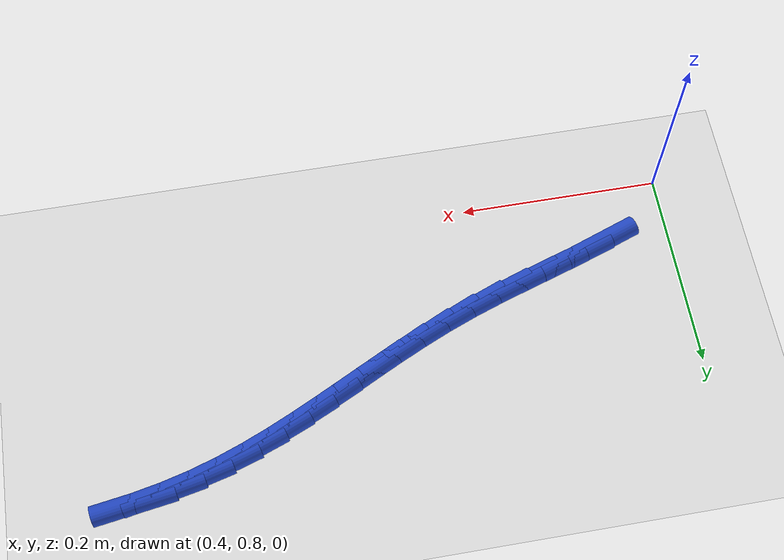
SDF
<sdf version="1.6">
 <world name="default">
  <model name="ground_plane">
   <static>1</static>
   <link name="link">
    <collision name="collision">
     <geometry><plane><normal>0 0 1</normal><size>100 100</size></plane></geometry>
     <surface><friction><ode><mu>100</mu><mu2>50</mu2></ode></friction></surface>
    </collision>
    <visual name="visual">
     <cast_shadows>0</cast_shadows>
     <geometry><plane><normal>0 0 1</normal><size>100 100</size></plane></geometry>
     <material>
      <script><uri>file://media/materials/scripts/gazebo.material</uri><name>Gazebo/WhiteGlow</name></script>
     </material>
    </visual>
   </link>
  </model>
  <model name="line">
   <link name="link_36">
    <pose>0.47197739136381084 0.8628700722413811 0.01 0 1.57 0.34816987220878004</pose>
    <collision name="collision">
     <geometry><cylinder><radius>0.01</radius><length>0.08</length></cylinder></geometry>
    </collision>
    <visual name="visual">
     <material>
      <script><name>Gazebo/Blue</name><uri>file://media/materials/scripts/gazebo.material</uri></script>
     </material>
     <geometry><cylinder><radius>0.01</radius><length>0.08</length></cylinder></geometry>
    </visual>
   </link>
   <link name="link_37">
    <pose>0.49981086287779014 0.8729723947355363 0.01 0 1.57 0.3221408546250163</pose>
    <collision name="collision">
     <geometry><cylinder><radius>0.01</radius><length>0.08</length></cylinder></geometry>
    </collision>
    <visual name="visual">
     <material>
      <script><name>Gazebo/Blue</name><uri>file://media/materials/scripts/gazebo.material</uri></script>
     </material>
     <geometry><cylinder><radius>0.01</radius><length>0.08</length></cylinder></geometry>
    </visual>
   </link>
   <link name="link_38">
    <pose>0.5283725485916635 0.8825053445107381 0.01 0 1.57 0.31311866313273773</pose>
    <collision name="collision">
     <geometry><cylinder><radius>0.01</radius><length>0.08</length></cylinder></geometry>
    </collision>
    <visual name="visual">
     <material>
      <script><name>Gazebo/Blue</name><uri>file://media/materials/scripts/gazebo.material</uri></script>
     </material>
     <geometry><cylinder><radius>0.01</radius><length>0.08</length></cylinder></geometry>
    </visual>
   </link>
   <link name="link_39">
    <pose>0.5572715623452341 0.8918619673029986 0.01 0 1.57 0.32044547369359994</pose>
    <collision name="collision">
     <geometry><cylinder><radius>0.01</radius><length>0.08</length></cylinder></geometry>
    </collision>
    <visual name="visual">
     <material>
      <script><name>Gazebo/Blue</name><uri>file://media/materials/scripts/gazebo.material</uri></script>
     </material>
     <geometry><cylinder><radius>0.01</radius><length>0.08</length></cylinder></geometry>
    </visual>
   </link>
   <link name="link_40">
    <pose>0.5861170179783048 0.9014353088483292 0.01 0 1.57 0.3442689581863764</pose>
    <collision name="collision">
     <geometry><cylinder><radius>0.01</radius><length>0.08</length></cylinder></geometry>
    </collision>
    <visual name="visual">
     <material>
      <script><name>Gazebo/Blue</name><uri>file://media/materials/scripts/gazebo.material</uri></script>
     </material>
     <geometry><cylinder><radius>0.01</radius><length>0.08</length></cylinder></geometry>
    </visual>
   </link>
   <link name="link_41">
    <pose>0.614518029330678 0.9116184148827412 0.01 0 1.57 0.3823207800764442</pose>
    <collision name="collision">
     <geometry><cylinder><radius>0.01</radius><length>0.08</length></cylinder></geometry>
    </collision>
    <visual name="visual">
     <material>
      <script><name>Gazebo/Blue</name><uri>file://media/materials/scripts/gazebo.material</uri></script>
     </material>
     <geometry><cylinder><radius>0.01</radius><length>0.08</length></cylinder></geometry>
    </visual>
   </link>
   <link name="link_42">
    <pose>0.6421481441470507 0.922728656417441 0.01 0 1.57 0.4178861468979338</pose>
    <collision name="collision">
     <geometry><cylinder><radius>0.01</radius><length>0.08</length></cylinder></geometry>
    </collision>
    <visual name="visual">
     <material>
      <script><name>Gazebo/Blue</name><uri>file://media/materials/scripts/gazebo.material</uri></script>
     </material>
     <geometry><cylinder><radius>0.01</radius><length>0.08</length></cylinder></geometry>
    </visual>
   </link>
   <link name="link_43">
    <pose>0.6690350363696759 0.9346674991636218 0.01 0 1.57 0.4446240596285598</pose>
    <collision name="collision">
     <geometry><cylinder><radius>0.01</radius><length>0.08</length></cylinder></geometry>
    </collision>
    <visual name="visual">
     <material>
      <script><name>Gazebo/Blue</name><uri>file://media/materials/scripts/gazebo.material</uri></script>
     </material>
     <geometry><cylinder><radius>0.01</radius><length>0.08</length></cylinder></geometry>
    </visual>
   </link>
   <link name="link_44">
    <pose>0.6953273975483508 0.9471942790925119 0.01 0 1.57 0.4621179388728625</pose>
    <collision name="collision">
     <geometry><cylinder><radius>0.01</radius><length>0.08</length></cylinder></geometry>
    </collision>
    <visual name="visual">
     <material>
      <script><name>Gazebo/Blue</name><uri>file://media/materials/scripts/gazebo.material</uri></script>
     </material>
     <geometry><cylinder><radius>0.01</radius><length>0.08</length></cylinder></geometry>
    </visual>
   </link>
   <link name="link_45">
    <pose>0.7211740240577932 0.9600682090631836 0.01 0 1.57 0.47005981276297243</pose>
    <collision name="collision">
     <geometry><cylinder><radius>0.01</radius><length>0.08</length></cylinder></geometry>
    </collision>
    <visual name="visual">
     <material>
      <script><name>Gazebo/Blue</name><uri>file://media/materials/scripts/gazebo.material</uri></script>
     </material>
     <geometry><cylinder><radius>0.01</radius><length>0.08</length></cylinder></geometry>
    </visual>
   </link>
   <link name="link_46">
    <pose>0.7467237122727204 0.9730485019347095 0.01 0 1.57 0.46820681863325114</pose>
    <collision name="collision">
     <geometry><cylinder><radius>0.01</radius><length>0.08</length></cylinder></geometry>
    </collision>
    <visual name="visual">
     <material>
      <script><name>Gazebo/Blue</name><uri>file://media/materials/scripts/gazebo.material</uri></script>
     </material>
     <geometry><cylinder><radius>0.01</radius><length>0.08</length></cylinder></geometry>
    </visual>
   </link>
   <link name="link_47">
    <pose>0.7721252585678502 0.9858943705661616 0.01 0 1.57 0.45636388445263176</pose>
    <collision name="collision">
     <geometry><cylinder><radius>0.01</radius><length>0.08</length></cylinder></geometry>
    </collision>
    <visual name="visual">
     <material>
      <script><name>Gazebo/Blue</name><uri>file://media/materials/scripts/gazebo.material</uri></script>
     </material>
     <geometry><cylinder><radius>0.01</radius><length>0.08</length></cylinder></geometry>
    </visual>
   </link>
   <link name="link_48">
    <pose>0.7975274593179 0.9983650278166122 0.01 0 1.57 0.4343930324177372</pose>
    <collision name="collision">
     <geometry><cylinder><radius>0.01</radius><length>0.08</length></cylinder></geometry>
    </collision>
    <visual name="visual">
     <material>
      <script><name>Gazebo/Blue</name><uri>file://media/materials/scripts/gazebo.material</uri></script>
     </material>
     <geometry><cylinder><radius>0.01</radius><length>0.08</length></cylinder></geometry>
    </visual>
   </link>
   <link name="link_49">
    <pose>0.8230791108975867 1.0102196865451334 0.01 0 1.57 0.4022528412503165</pose>
    <collision name="collision">
     <geometry><cylinder><radius>0.01</radius><length>0.08</length></cylinder></geometry>
    </collision>
    <visual name="visual">
     <material>
      <script><name>Gazebo/Blue</name><uri>file://media/materials/scripts/gazebo.material</uri></script>
     </material>
     <geometry><cylinder><radius>0.01</radius><length>0.08</length></cylinder></geometry>
    </visual>
   </link>
   <link name="link_50">
    <pose>0.8489290096816288 1.0212175596107982 0.01 0 1.57 0.36006848537966896</pose>
    <collision name="collision">
     <geometry><cylinder><radius>0.01</radius><length>0.08</length></cylinder></geometry>
    </collision>
    <visual name="visual">
     <material>
      <script><name>Gazebo/Blue</name><uri>file://media/materials/scripts/gazebo.material</uri></script>
     </material>
     <geometry><cylinder><radius>0.01</radius><length>0.08</length></cylinder></geometry>
    </visual>
   </link>
   <link name="link_51">
    <pose>0.8752259520447435 1.0311178598726787 0.01 0 1.57 0.308358683951381</pose>
    <collision name="collision">
     <geometry><cylinder><radius>0.01</radius><length>0.08</length></cylinder></geometry>
    </collision>
    <visual name="visual">
     <material>
      <script><name>Gazebo/Blue</name><uri>file://media/materials/scripts/gazebo.material</uri></script>
     </material>
     <geometry><cylinder><radius>0.01</radius><length>0.08</length></cylinder></geometry>
    </visual>
   </link>
   <link name="link_52">
    <pose>0.9021159305384733 1.0396828214953764 0.01 0 1.57 0.25281044482680665</pose>
    <collision name="collision">
     <geometry><cylinder><radius>0.01</radius><length>0.08</length></cylinder></geometry>
    </collision>
    <visual name="visual">
     <material>
      <script><name>Gazebo/Blue</name><uri>file://media/materials/scripts/gazebo.material</uri></script>
     </material>
     <geometry><cylinder><radius>0.01</radius><length>0.08</length></cylinder></geometry>
    </visual>
   </link>
   <link name="link_53">
    <pose>0.9296358290076907 1.0467922505152725 0.01 0 1.57 0.20005198882270578</pose>
    <collision name="collision">
     <geometry><cylinder><radius>0.01</radius><length>0.08</length></cylinder></geometry>
    </collision>
    <visual name="visual">
     <material>
      <script><name>Gazebo/Blue</name><uri>file://media/materials/scripts/gazebo.material</uri></script>
     </material>
     <geometry><cylinder><radius>0.01</radius><length>0.08</length></cylinder></geometry>
    </visual>
   </link>
   <link name="link_54">
    <pose>0.9576807315118115 1.0524787516472653 0.01 0 1.57 0.15019814692973144</pose>
    <collision name="collision">
     <geometry><cylinder><radius>0.01</radius><length>0.08</length></cylinder></geometry>
    </collision>
    <visual name="visual">
     <material>
      <script><name>Gazebo/Blue</name><uri>file://media/materials/scripts/gazebo.material</uri></script>
     </material>
     <geometry><cylinder><radius>0.01</radius><length>0.08</length></cylinder></geometry>
    </visual>
   </link>
  </model>
 </world>
</sdf>
